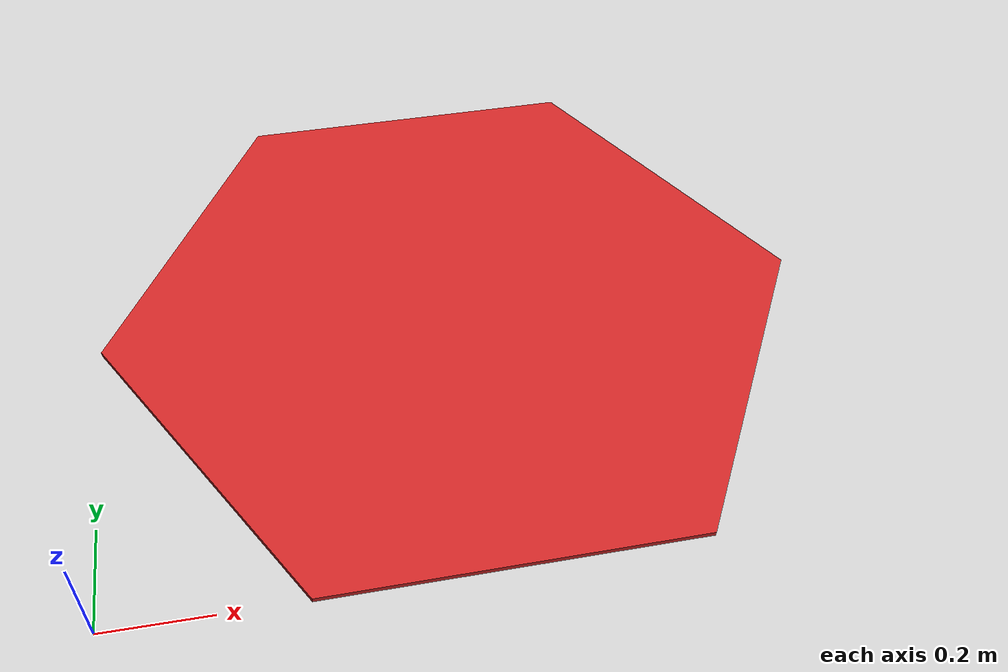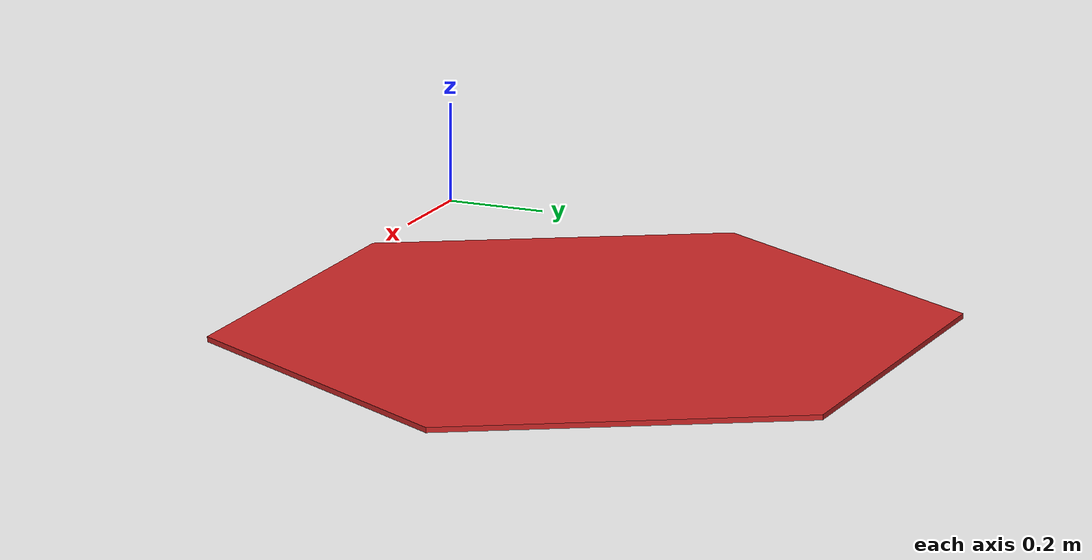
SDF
<?xml version="1.0" ?>
<sdf version="1.5">
  <model name="hexagon_142">
    <static>true</static>
    <link name="link">
      <visual name="visual_top">
        <pose> 0 0 -0.008 0 0 0 </pose>
        <geometry>
          <mesh>
            <scale> 0.01 0.01 0.0000625</scale>
            <uri>model://hexagon_142/meshes/hexagon_142.STL</uri>
          </mesh>
        </geometry>
        <material>
          <lighting>1</lighting>
          <script>
            <uri>file://media/materials/scripts/gazebo.material</uri>
            <name>Gazebo/Red</name>
          </script>

          <shader type='vertex'>
            <normal_map>__default__</normal_map>
          </shader>
        </material>
      </visual>
    </link>

    <link name="point0">
      <pose relative_to="link">
        0.35859 0 0 0 0 0
      </pose>
    </link>

    <link name="point1">
      <pose relative_to="link">
        1.0686 0.004158 0 0 0 0
      </pose>
    </link>

    <link name="point2">
      <pose relative_to="link">
        1.42 0.6211 0 0 0 0
      </pose>
    </link>

    <link name="point3">
      <pose relative_to="link">
        1.0614 1.2339 0 0 0 0
      </pose>
    </link>

    <link name="point4">
      <pose relative_to="link">
        0.35139 1.2297 0 0 0 0
      </pose>
    </link>

    <link name="point5">
      <pose relative_to="link">
        0 0.61279 0 0 0 0
      </pose>
    </link>
  </model>
</sdf>
